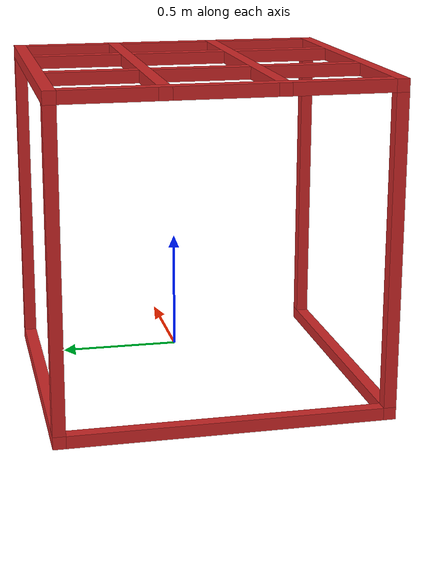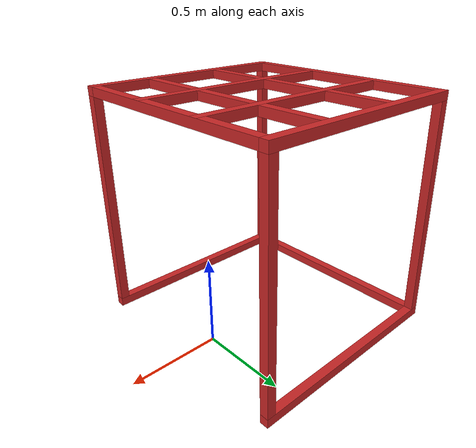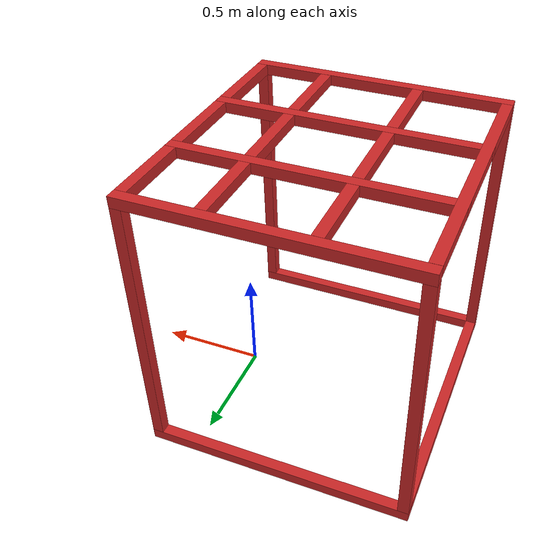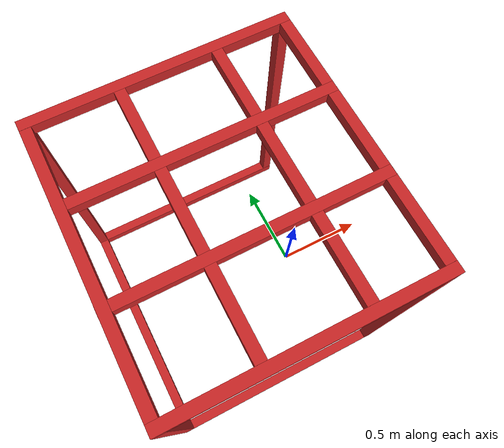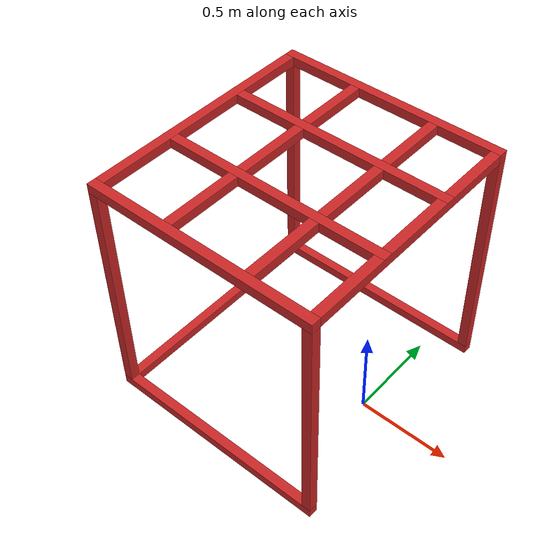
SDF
<sdf version="1.6">
 <model name="warehouse_red_box">
  <link name="link_0_clone">
   <pose>-0.997066 -0.0076 0.03 0 -0 0</pose>
   <inertial>
    <mass>1</mass>
    <inertia>
     <ixx>0.166667</ixx>
     <ixy>0</ixy>
     <ixz>0</ixz>
     <iyy>0.166667</iyy>
     <iyz>0</iyz>
     <izz>0.166667</izz>
    </inertia>
   </inertial>
   <visual name="visual">
    <geometry><box><size>0.05 1.23 0.05</size></box></geometry>
    <material>
     <lighting>1</lighting>
     <script><uri>file://media/materials/scripts/gazebo.material</uri><name>Gazebo/Red</name></script>
     <ambient>1 0 0 0</ambient>
     <diffuse>1 0 0 0</diffuse>
     <specular>0.1 0.1 0.1 1</specular>
     <emissive>0 0 0 1</emissive>
     <shader type="vertex"><normal_map>__default__</normal_map></shader>
    </material>
   </visual>
   <collision name="collision">
    <geometry><box><size>0.05 1.23 0.05</size></box></geometry>
    <surface>
     <friction>
      <ode><mu>1</mu><mu2>1</mu2><fdir1>0 0 0</fdir1><slip1>0</slip1><slip2>0</slip2></ode>
      <torsional>
       <coefficient>1</coefficient>
       <patch_radius>0</patch_radius>
       <surface_radius>0</surface_radius>
       <use_patch_radius>1</use_patch_radius>
       <ode><slip>0</slip></ode>
      </torsional>
     </friction>
     <bounce><restitution_coefficient>0</restitution_coefficient><threshold>1e+06</threshold></bounce>
     <contact>
      <collide_without_contact>0</collide_without_contact>
      <collide_without_contact_bitmask>1</collide_without_contact_bitmask>
      <collide_bitmask>1</collide_bitmask>
      <ode>
       <soft_cfm>0</soft_cfm>
       <soft_erp>0.2</soft_erp>
       <kp>1e+13</kp>
       <kd>1</kd>
       <max_vel>0.01</max_vel>
       <min_depth>0</min_depth>
      </ode>
      <bullet>
       <split_impulse>1</split_impulse>
       <split_impulse_penetration_threshold>-0.01</split_impulse_penetration_threshold>
       <soft_cfm>0</soft_cfm>
       <soft_erp>0.2</soft_erp>
       <kp>1e+13</kp>
       <kd>1</kd>
      </bullet>
     </contact>
    </surface>
   </collision>
  </link>
  <link name="link_0_clone_clone">
   <pose>-0.407063 0.632459 0.03 0 -0 1.5707</pose>
   <inertial>
    <mass>1</mass>
    <inertia>
     <ixx>0.166667</ixx>
     <ixy>0</ixy>
     <ixz>0</ixz>
     <iyy>0.166667</iyy>
     <iyz>0</iyz>
     <izz>0.166667</izz>
    </inertia>
   </inertial>
   <visual name="visual">
    <geometry><box><size>0.05 1.23 0.05</size></box></geometry>
    <material>
     <lighting>1</lighting>
     <script><uri>file://media/materials/scripts/gazebo.material</uri><name>Gazebo/Red</name></script>
     <ambient>1 0 0 0</ambient>
     <diffuse>1 0 0 0</diffuse>
     <specular>0.1 0.1 0.1 1</specular>
     <emissive>0 0 0 1</emissive>
     <shader type="vertex"><normal_map>__default__</normal_map></shader>
    </material>
   </visual>
   <collision name="collision">
    <geometry><box><size>0.05 1.23 0.05</size></box></geometry>
    <surface>
     <friction>
      <ode><mu>1</mu><mu2>1</mu2><fdir1>0 0 0</fdir1><slip1>0</slip1><slip2>0</slip2></ode>
      <torsional>
       <coefficient>1</coefficient>
       <patch_radius>0</patch_radius>
       <surface_radius>0</surface_radius>
       <use_patch_radius>1</use_patch_radius>
       <ode><slip>0</slip></ode>
      </torsional>
     </friction>
     <bounce><restitution_coefficient>0</restitution_coefficient><threshold>1e+06</threshold></bounce>
     <contact>
      <collide_without_contact>0</collide_without_contact>
      <collide_without_contact_bitmask>1</collide_without_contact_bitmask>
      <collide_bitmask>1</collide_bitmask>
      <ode>
       <soft_cfm>0</soft_cfm>
       <soft_erp>0.2</soft_erp>
       <kp>1e+13</kp>
       <kd>1</kd>
       <max_vel>0.01</max_vel>
       <min_depth>0</min_depth>
      </ode>
      <bullet>
       <split_impulse>1</split_impulse>
       <split_impulse_penetration_threshold>-0.01</split_impulse_penetration_threshold>
       <soft_cfm>0</soft_cfm>
       <soft_erp>0.2</soft_erp>
       <kp>1e+13</kp>
       <kd>1</kd>
      </bullet>
     </contact>
    </surface>
   </collision>
  </link>
  <link name="link_0_clone_clone_0">
   <pose>-0.997078 -0.007706 1.31001 -0 -3e-06 -9e-06</pose>
   <inertial>
    <mass>1</mass>
    <inertia>
     <ixx>0.166667</ixx>
     <ixy>0</ixy>
     <ixz>0</ixz>
     <iyy>0.166667</iyy>
     <iyz>0</iyz>
     <izz>0.166667</izz>
    </inertia>
   </inertial>
   <visual name="visual">
    <geometry><box><size>0.05 1.23 0.05</size></box></geometry>
    <material>
     <lighting>1</lighting>
     <script><uri>file://media/materials/scripts/gazebo.material</uri><name>Gazebo/Red</name></script>
     <ambient>1 0 0 0</ambient>
     <diffuse>1 0 0 0</diffuse>
     <specular>0.1 0.1 0.1 1</specular>
     <emissive>0 0 0 1</emissive>
     <shader type="vertex"><normal_map>__default__</normal_map></shader>
    </material>
   </visual>
   <collision name="collision">
    <geometry><box><size>0.05 1.23 0.05</size></box></geometry>
    <surface>
     <friction>
      <ode><mu>1</mu><mu2>1</mu2><fdir1>0 0 0</fdir1><slip1>0</slip1><slip2>0</slip2></ode>
      <torsional>
       <coefficient>1</coefficient>
       <patch_radius>0</patch_radius>
       <surface_radius>0</surface_radius>
       <use_patch_radius>1</use_patch_radius>
       <ode><slip>0</slip></ode>
      </torsional>
     </friction>
     <bounce><restitution_coefficient>0</restitution_coefficient><threshold>1e+06</threshold></bounce>
     <contact>
      <collide_without_contact>0</collide_without_contact>
      <collide_without_contact_bitmask>1</collide_without_contact_bitmask>
      <collide_bitmask>1</collide_bitmask>
      <ode>
       <soft_cfm>0</soft_cfm>
       <soft_erp>0.2</soft_erp>
       <kp>1e+13</kp>
       <kd>1</kd>
       <max_vel>0.01</max_vel>
       <min_depth>0</min_depth>
      </ode>
      <bullet>
       <split_impulse>1</split_impulse>
       <split_impulse_penetration_threshold>-0.01</split_impulse_penetration_threshold>
       <soft_cfm>0</soft_cfm>
       <soft_erp>0.2</soft_erp>
       <kp>1e+13</kp>
       <kd>1</kd>
      </bullet>
     </contact>
    </surface>
   </collision>
  </link>
  <link name="link_0_clone_clone_1">
   <pose>-0.146614 -0.007496 1.31 -0 -3e-06 -9e-06</pose>
   <inertial>
    <mass>1</mass>
    <inertia>
     <ixx>0.166667</ixx>
     <ixy>0</ixy>
     <ixz>0</ixz>
     <iyy>0.166667</iyy>
     <iyz>0</iyz>
     <izz>0.166667</izz>
    </inertia>
   </inertial>
   <visual name="visual">
    <geometry><box><size>0.05 1.23 0.05</size></box></geometry>
    <material>
     <lighting>1</lighting>
     <script><uri>file://media/materials/scripts/gazebo.material</uri><name>Gazebo/Red</name></script>
     <ambient>1 0 0 0</ambient>
     <diffuse>1 0 0 0</diffuse>
     <specular>0.1 0.1 0.1 1</specular>
     <emissive>0 0 0 1</emissive>
     <shader type="vertex"><normal_map>__default__</normal_map></shader>
    </material>
   </visual>
   <collision name="collision">
    <geometry><box><size>0.05 1.23 0.05</size></box></geometry>
    <surface>
     <friction>
      <ode><mu>1</mu><mu2>1</mu2><fdir1>0 0 0</fdir1><slip1>0</slip1><slip2>0</slip2></ode>
      <torsional>
       <coefficient>1</coefficient>
       <patch_radius>0</patch_radius>
       <surface_radius>0</surface_radius>
       <use_patch_radius>1</use_patch_radius>
       <ode><slip>0</slip></ode>
      </torsional>
     </friction>
     <bounce><restitution_coefficient>0</restitution_coefficient><threshold>1e+06</threshold></bounce>
     <contact>
      <collide_without_contact>0</collide_without_contact>
      <collide_without_contact_bitmask>1</collide_without_contact_bitmask>
      <collide_bitmask>1</collide_bitmask>
      <ode>
       <soft_cfm>0</soft_cfm>
       <soft_erp>0.2</soft_erp>
       <kp>1e+13</kp>
       <kd>1</kd>
       <max_vel>0.01</max_vel>
       <min_depth>0</min_depth>
      </ode>
      <bullet>
       <split_impulse>1</split_impulse>
       <split_impulse_penetration_threshold>-0.01</split_impulse_penetration_threshold>
       <soft_cfm>0</soft_cfm>
       <soft_erp>0.2</soft_erp>
       <kp>1e+13</kp>
       <kd>1</kd>
      </bullet>
     </contact>
    </surface>
   </collision>
  </link>
  <link name="link_0_clone_clone_2">
   <pose>-0.591953 -0.007492 1.31 -0 -3e-06 -9e-06</pose>
   <inertial>
    <mass>1</mass>
    <inertia>
     <ixx>0.166667</ixx>
     <ixy>0</ixy>
     <ixz>0</ixz>
     <iyy>0.166667</iyy>
     <iyz>0</iyz>
     <izz>0.166667</izz>
    </inertia>
   </inertial>
   <visual name="visual">
    <geometry><box><size>0.05 1.23 0.05</size></box></geometry>
    <material>
     <lighting>1</lighting>
     <script><uri>file://media/materials/scripts/gazebo.material</uri><name>Gazebo/Red</name></script>
     <ambient>1 0 0 0</ambient>
     <diffuse>1 0 0 0</diffuse>
     <specular>0.1 0.1 0.1 1</specular>
     <emissive>0 0 0 1</emissive>
     <shader type="vertex"><normal_map>__default__</normal_map></shader>
    </material>
   </visual>
   <collision name="collision">
    <geometry><box><size>0.05 1.23 0.05</size></box></geometry>
    <surface>
     <friction>
      <ode><mu>1</mu><mu2>1</mu2><fdir1>0 0 0</fdir1><slip1>0</slip1><slip2>0</slip2></ode>
      <torsional>
       <coefficient>1</coefficient>
       <patch_radius>0</patch_radius>
       <surface_radius>0</surface_radius>
       <use_patch_radius>1</use_patch_radius>
       <ode><slip>0</slip></ode>
      </torsional>
     </friction>
     <bounce><restitution_coefficient>0</restitution_coefficient><threshold>1e+06</threshold></bounce>
     <contact>
      <collide_without_contact>0</collide_without_contact>
      <collide_without_contact_bitmask>1</collide_without_contact_bitmask>
      <collide_bitmask>1</collide_bitmask>
      <ode>
       <soft_cfm>0</soft_cfm>
       <soft_erp>0.2</soft_erp>
       <kp>1e+13</kp>
       <kd>1</kd>
       <max_vel>0.01</max_vel>
       <min_depth>0</min_depth>
      </ode>
      <bullet>
       <split_impulse>1</split_impulse>
       <split_impulse_penetration_threshold>-0.01</split_impulse_penetration_threshold>
       <soft_cfm>0</soft_cfm>
       <soft_erp>0.2</soft_erp>
       <kp>1e+13</kp>
       <kd>1</kd>
      </bullet>
     </contact>
    </surface>
   </collision>
  </link>
  <link name="link_0_clone_clone_2_clone">
   <pose>0.182936 -0.007504 1.31001 0 -6e-06 -1.8e-05</pose>
   <inertial>
    <mass>1</mass>
    <inertia>
     <ixx>0.166667</ixx>
     <ixy>0</ixy>
     <ixz>0</ixz>
     <iyy>0.166667</iyy>
     <iyz>0</iyz>
     <izz>0.166667</izz>
    </inertia>
   </inertial>
   <visual name="visual">
    <geometry><box><size>0.05 1.23 0.05</size></box></geometry>
    <material>
     <lighting>1</lighting>
     <script><uri>file://media/materials/scripts/gazebo.material</uri><name>Gazebo/Red</name></script>
     <ambient>1 0 0 0</ambient>
     <diffuse>1 0 0 0</diffuse>
     <specular>0.1 0.1 0.1 1</specular>
     <emissive>0 0 0 1</emissive>
     <shader type="vertex"><normal_map>__default__</normal_map></shader>
    </material>
   </visual>
   <collision name="collision">
    <geometry><box><size>0.05 1.23 0.05</size></box></geometry>
    <surface>
     <friction>
      <ode><mu>1</mu><mu2>1</mu2><fdir1>0 0 0</fdir1><slip1>0</slip1><slip2>0</slip2></ode>
      <torsional>
       <coefficient>1</coefficient>
       <patch_radius>0</patch_radius>
       <surface_radius>0</surface_radius>
       <use_patch_radius>1</use_patch_radius>
       <ode><slip>0</slip></ode>
      </torsional>
     </friction>
     <bounce><restitution_coefficient>0</restitution_coefficient><threshold>1e+06</threshold></bounce>
     <contact>
      <collide_without_contact>0</collide_without_contact>
      <collide_without_contact_bitmask>1</collide_without_contact_bitmask>
      <collide_bitmask>1</collide_bitmask>
      <ode>
       <soft_cfm>0</soft_cfm>
       <soft_erp>0.2</soft_erp>
       <kp>1e+13</kp>
       <kd>1</kd>
       <max_vel>0.01</max_vel>
       <min_depth>0</min_depth>
      </ode>
      <bullet>
       <split_impulse>1</split_impulse>
       <split_impulse_penetration_threshold>-0.01</split_impulse_penetration_threshold>
       <soft_cfm>0</soft_cfm>
       <soft_erp>0.2</soft_erp>
       <kp>1e+13</kp>
       <kd>1</kd>
      </bullet>
     </contact>
    </surface>
   </collision>
  </link>
  <link name="link_0_clone_clone_clone">
   <pose>-0.407063 -0.647659 0.03 0 -0 1.5707</pose>
   <inertial>
    <mass>1</mass>
    <inertia>
     <ixx>0.166667</ixx>
     <ixy>0</ixy>
     <ixz>0</ixz>
     <iyy>0.166667</iyy>
     <iyz>0</iyz>
     <izz>0.166667</izz>
    </inertia>
   </inertial>
   <visual name="visual">
    <geometry><box><size>0.05 1.23 0.05</size></box></geometry>
    <material>
     <lighting>1</lighting>
     <script><uri>file://media/materials/scripts/gazebo.material</uri><name>Gazebo/Red</name></script>
     <ambient>1 0 0 0</ambient>
     <diffuse>1 0 0 0</diffuse>
     <specular>0.1 0.1 0.1 1</specular>
     <emissive>0 0 0 1</emissive>
     <shader type="vertex"><normal_map>__default__</normal_map></shader>
    </material>
   </visual>
   <collision name="collision">
    <geometry><box><size>0.05 1.23 0.05</size></box></geometry>
    <surface>
     <friction>
      <ode><mu>1</mu><mu2>1</mu2><fdir1>0 0 0</fdir1><slip1>0</slip1><slip2>0</slip2></ode>
      <torsional>
       <coefficient>1</coefficient>
       <patch_radius>0</patch_radius>
       <surface_radius>0</surface_radius>
       <use_patch_radius>1</use_patch_radius>
       <ode><slip>0</slip></ode>
      </torsional>
     </friction>
     <bounce><restitution_coefficient>0</restitution_coefficient><threshold>1e+06</threshold></bounce>
     <contact>
      <collide_without_contact>0</collide_without_contact>
      <collide_without_contact_bitmask>1</collide_without_contact_bitmask>
      <collide_bitmask>1</collide_bitmask>
      <ode>
       <soft_cfm>0</soft_cfm>
       <soft_erp>0.2</soft_erp>
       <kp>1e+13</kp>
       <kd>1</kd>
       <max_vel>0.01</max_vel>
       <min_depth>0</min_depth>
      </ode>
      <bullet>
       <split_impulse>1</split_impulse>
       <split_impulse_penetration_threshold>-0.01</split_impulse_penetration_threshold>
       <soft_cfm>0</soft_cfm>
       <soft_erp>0.2</soft_erp>
       <kp>1e+13</kp>
       <kd>1</kd>
      </bullet>
     </contact>
    </surface>
   </collision>
  </link>
  <link name="link_0_clone_clone_clone_0">
   <pose>-0.407343 0.226275 1.31001 -3e-06 0 1.56992</pose>
   <inertial>
    <mass>1</mass>
    <inertia>
     <ixx>0.166667</ixx>
     <ixy>0</ixy>
     <ixz>0</ixz>
     <iyy>0.166667</iyy>
     <iyz>0</iyz>
     <izz>0.166667</izz>
    </inertia>
   </inertial>
   <visual name="visual">
    <geometry><box><size>0.05 1.23 0.05</size></box></geometry>
    <material>
     <lighting>1</lighting>
     <script><uri>file://media/materials/scripts/gazebo.material</uri><name>Gazebo/Red</name></script>
     <ambient>1 0 0 0</ambient>
     <diffuse>1 0 0 0</diffuse>
     <specular>0.1 0.1 0.1 1</specular>
     <emissive>0 0 0 1</emissive>
     <shader type="vertex"><normal_map>__default__</normal_map></shader>
    </material>
   </visual>
   <collision name="collision">
    <geometry><box><size>0.05 1.23 0.05</size></box></geometry>
    <surface>
     <friction>
      <ode><mu>1</mu><mu2>1</mu2><fdir1>0 0 0</fdir1><slip1>0</slip1><slip2>0</slip2></ode>
      <torsional>
       <coefficient>1</coefficient>
       <patch_radius>0</patch_radius>
       <surface_radius>0</surface_radius>
       <use_patch_radius>1</use_patch_radius>
       <ode><slip>0</slip></ode>
      </torsional>
     </friction>
     <bounce><restitution_coefficient>0</restitution_coefficient><threshold>1e+06</threshold></bounce>
     <contact>
      <collide_without_contact>0</collide_without_contact>
      <collide_without_contact_bitmask>1</collide_without_contact_bitmask>
      <collide_bitmask>1</collide_bitmask>
      <ode>
       <soft_cfm>0</soft_cfm>
       <soft_erp>0.2</soft_erp>
       <kp>1e+13</kp>
       <kd>1</kd>
       <max_vel>0.01</max_vel>
       <min_depth>0</min_depth>
      </ode>
      <bullet>
       <split_impulse>1</split_impulse>
       <split_impulse_penetration_threshold>-0.01</split_impulse_penetration_threshold>
       <soft_cfm>0</soft_cfm>
       <soft_erp>0.2</soft_erp>
       <kp>1e+13</kp>
       <kd>1</kd>
      </bullet>
     </contact>
    </surface>
   </collision>
  </link>
  <link name="link_0_clone_clone_clone_clone">
   <pose>0.182939 -0.647558 0.670002 1.5707 -0 0</pose>
   <inertial>
    <mass>1</mass>
    <inertia>
     <ixx>0.166667</ixx>
     <ixy>0</ixy>
     <ixz>0</ixz>
     <iyy>0.166667</iyy>
     <iyz>0</iyz>
     <izz>0.166667</izz>
    </inertia>
   </inertial>
   <visual name="visual">
    <geometry><box><size>0.05 1.23 0.05</size></box></geometry>
    <material>
     <lighting>1</lighting>
     <script><uri>file://media/materials/scripts/gazebo.material</uri><name>Gazebo/Red</name></script>
     <ambient>1 0 0 0</ambient>
     <diffuse>1 0 0 0</diffuse>
     <specular>0.1 0.1 0.1 1</specular>
     <emissive>0 0 0 1</emissive>
     <shader type="vertex"><normal_map>__default__</normal_map></shader>
    </material>
   </visual>
   <collision name="collision">
    <geometry><box><size>0.05 1.23 0.05</size></box></geometry>
    <surface>
     <friction>
      <ode><mu>1</mu><mu2>1</mu2><fdir1>0 0 0</fdir1><slip1>0</slip1><slip2>0</slip2></ode>
      <torsional>
       <coefficient>1</coefficient>
       <patch_radius>0</patch_radius>
       <surface_radius>0</surface_radius>
       <use_patch_radius>1</use_patch_radius>
       <ode><slip>0</slip></ode>
      </torsional>
     </friction>
     <bounce><restitution_coefficient>0</restitution_coefficient><threshold>1e+06</threshold></bounce>
     <contact>
      <collide_without_contact>0</collide_without_contact>
      <collide_without_contact_bitmask>1</collide_without_contact_bitmask>
      <collide_bitmask>1</collide_bitmask>
      <ode>
       <soft_cfm>0</soft_cfm>
       <soft_erp>0.2</soft_erp>
       <kp>1e+13</kp>
       <kd>1</kd>
       <max_vel>0.01</max_vel>
       <min_depth>0</min_depth>
      </ode>
      <bullet>
       <split_impulse>1</split_impulse>
       <split_impulse_penetration_threshold>-0.01</split_impulse_penetration_threshold>
       <soft_cfm>0</soft_cfm>
       <soft_erp>0.2</soft_erp>
       <kp>1e+13</kp>
       <kd>1</kd>
      </bullet>
     </contact>
    </surface>
   </collision>
  </link>
  <link name="link_0_clone_clone_clone_clone_0">
   <pose>-0.407063 -0.647552 1.31 -3e-06 -0 1.57069</pose>
   <inertial>
    <mass>1</mass>
    <inertia>
     <ixx>0.166667</ixx>
     <ixy>0</ixy>
     <ixz>0</ixz>
     <iyy>0.166667</iyy>
     <iyz>0</iyz>
     <izz>0.166667</izz>
    </inertia>
   </inertial>
   <visual name="visual">
    <geometry><box><size>0.05 1.23 0.05</size></box></geometry>
    <material>
     <lighting>1</lighting>
     <script><uri>file://media/materials/scripts/gazebo.material</uri><name>Gazebo/Red</name></script>
     <ambient>1 0 0 0</ambient>
     <diffuse>1 0 0 0</diffuse>
     <specular>0.1 0.1 0.1 1</specular>
     <emissive>0 0 0 1</emissive>
     <shader type="vertex"><normal_map>__default__</normal_map></shader>
    </material>
   </visual>
   <collision name="collision">
    <geometry><box><size>0.05 1.23 0.05</size></box></geometry>
    <surface>
     <friction>
      <ode><mu>1</mu><mu2>1</mu2><fdir1>0 0 0</fdir1><slip1>0</slip1><slip2>0</slip2></ode>
      <torsional>
       <coefficient>1</coefficient>
       <patch_radius>0</patch_radius>
       <surface_radius>0</surface_radius>
       <use_patch_radius>1</use_patch_radius>
       <ode><slip>0</slip></ode>
      </torsional>
     </friction>
     <bounce><restitution_coefficient>0</restitution_coefficient><threshold>1e+06</threshold></bounce>
     <contact>
      <collide_without_contact>0</collide_without_contact>
      <collide_without_contact_bitmask>1</collide_without_contact_bitmask>
      <collide_bitmask>1</collide_bitmask>
      <ode>
       <soft_cfm>0</soft_cfm>
       <soft_erp>0.2</soft_erp>
       <kp>1e+13</kp>
       <kd>1</kd>
       <max_vel>0.01</max_vel>
       <min_depth>0</min_depth>
      </ode>
      <bullet>
       <split_impulse>1</split_impulse>
       <split_impulse_penetration_threshold>-0.01</split_impulse_penetration_threshold>
       <soft_cfm>0</soft_cfm>
       <soft_erp>0.2</soft_erp>
       <kp>1e+13</kp>
       <kd>1</kd>
      </bullet>
     </contact>
    </surface>
   </collision>
  </link>
  <link name="link_0_clone_clone_clone_clone_1">
   <pose>-0.407054 0.632566 1.31 -3e-06 -0 1.57069</pose>
   <inertial>
    <mass>1</mass>
    <inertia>
     <ixx>0.166667</ixx>
     <ixy>0</ixy>
     <ixz>0</ixz>
     <iyy>0.166667</iyy>
     <iyz>0</iyz>
     <izz>0.166667</izz>
    </inertia>
   </inertial>
   <visual name="visual">
    <geometry><box><size>0.05 1.23 0.05</size></box></geometry>
    <material>
     <lighting>1</lighting>
     <script><uri>file://media/materials/scripts/gazebo.material</uri><name>Gazebo/Red</name></script>
     <ambient>1 0 0 0</ambient>
     <diffuse>1 0 0 0</diffuse>
     <specular>0.1 0.1 0.1 1</specular>
     <emissive>0 0 0 1</emissive>
     <shader type="vertex"><normal_map>__default__</normal_map></shader>
    </material>
   </visual>
   <collision name="collision">
    <geometry><box><size>0.05 1.23 0.05</size></box></geometry>
    <surface>
     <friction>
      <ode><mu>1</mu><mu2>1</mu2><fdir1>0 0 0</fdir1><slip1>0</slip1><slip2>0</slip2></ode>
      <torsional>
       <coefficient>1</coefficient>
       <patch_radius>0</patch_radius>
       <surface_radius>0</surface_radius>
       <use_patch_radius>1</use_patch_radius>
       <ode><slip>0</slip></ode>
      </torsional>
     </friction>
     <bounce><restitution_coefficient>0</restitution_coefficient><threshold>1e+06</threshold></bounce>
     <contact>
      <collide_without_contact>0</collide_without_contact>
      <collide_without_contact_bitmask>1</collide_without_contact_bitmask>
      <collide_bitmask>1</collide_bitmask>
      <ode>
       <soft_cfm>0</soft_cfm>
       <soft_erp>0.2</soft_erp>
       <kp>1e+13</kp>
       <kd>1</kd>
       <max_vel>0.01</max_vel>
       <min_depth>0</min_depth>
      </ode>
      <bullet>
       <split_impulse>1</split_impulse>
       <split_impulse_penetration_threshold>-0.01</split_impulse_penetration_threshold>
       <soft_cfm>0</soft_cfm>
       <soft_erp>0.2</soft_erp>
       <kp>1e+13</kp>
       <kd>1</kd>
      </bullet>
     </contact>
    </surface>
   </collision>
  </link>
  <link name="link_0_clone_clone_clone_clone_2">
   <pose>-0.407722 -0.207755 1.31001 -3e-06 0 1.56992</pose>
   <inertial>
    <mass>1</mass>
    <inertia>
     <ixx>0.166667</ixx>
     <ixy>0</ixy>
     <ixz>0</ixz>
     <iyy>0.166667</iyy>
     <iyz>0</iyz>
     <izz>0.166667</izz>
    </inertia>
   </inertial>
   <visual name="visual">
    <geometry><box><size>0.05 1.23 0.05</size></box></geometry>
    <material>
     <lighting>1</lighting>
     <script><uri>file://media/materials/scripts/gazebo.material</uri><name>Gazebo/Red</name></script>
     <ambient>1 0 0 0</ambient>
     <diffuse>1 0 0 0</diffuse>
     <specular>0.1 0.1 0.1 1</specular>
     <emissive>0 0 0 1</emissive>
     <shader type="vertex"><normal_map>__default__</normal_map></shader>
    </material>
   </visual>
   <collision name="collision">
    <geometry><box><size>0.05 1.23 0.05</size></box></geometry>
    <surface>
     <friction>
      <ode><mu>1</mu><mu2>1</mu2><fdir1>0 0 0</fdir1><slip1>0</slip1><slip2>0</slip2></ode>
      <torsional>
       <coefficient>1</coefficient>
       <patch_radius>0</patch_radius>
       <surface_radius>0</surface_radius>
       <use_patch_radius>1</use_patch_radius>
       <ode><slip>0</slip></ode>
      </torsional>
     </friction>
     <bounce><restitution_coefficient>0</restitution_coefficient><threshold>1e+06</threshold></bounce>
     <contact>
      <collide_without_contact>0</collide_without_contact>
      <collide_without_contact_bitmask>1</collide_without_contact_bitmask>
      <collide_bitmask>1</collide_bitmask>
      <ode>
       <soft_cfm>0</soft_cfm>
       <soft_erp>0.2</soft_erp>
       <kp>1e+13</kp>
       <kd>1</kd>
       <max_vel>0.01</max_vel>
       <min_depth>0</min_depth>
      </ode>
      <bullet>
       <split_impulse>1</split_impulse>
       <split_impulse_penetration_threshold>-0.01</split_impulse_penetration_threshold>
       <soft_cfm>0</soft_cfm>
       <soft_erp>0.2</soft_erp>
       <kp>1e+13</kp>
       <kd>1</kd>
      </bullet>
     </contact>
    </surface>
   </collision>
  </link>
  <link name="link_0_clone_clone_clone_clone_clone">
   <pose>0.182944 0.63256 0.670002 1.5707 0 0.00017</pose>
   <inertial>
    <mass>1</mass>
    <inertia>
     <ixx>0.166667</ixx>
     <ixy>0</ixy>
     <ixz>0</ixz>
     <iyy>0.166667</iyy>
     <iyz>0</iyz>
     <izz>0.166667</izz>
    </inertia>
   </inertial>
   <visual name="visual">
    <geometry><box><size>0.05 1.23 0.05</size></box></geometry>
    <material>
     <lighting>1</lighting>
     <script><uri>file://media/materials/scripts/gazebo.material</uri><name>Gazebo/Red</name></script>
     <ambient>1 0 0 0</ambient>
     <diffuse>1 0 0 0</diffuse>
     <specular>0.1 0.1 0.1 1</specular>
     <emissive>0 0 0 1</emissive>
     <shader type="vertex"><normal_map>__default__</normal_map></shader>
    </material>
   </visual>
   <collision name="collision">
    <geometry><box><size>0.05 1.23 0.05</size></box></geometry>
    <surface>
     <friction>
      <ode><mu>1</mu><mu2>1</mu2><fdir1>0 0 0</fdir1><slip1>0</slip1><slip2>0</slip2></ode>
      <torsional>
       <coefficient>1</coefficient>
       <patch_radius>0</patch_radius>
       <surface_radius>0</surface_radius>
       <use_patch_radius>1</use_patch_radius>
       <ode><slip>0</slip></ode>
      </torsional>
     </friction>
     <bounce><restitution_coefficient>0</restitution_coefficient><threshold>1e+06</threshold></bounce>
     <contact>
      <collide_without_contact>0</collide_without_contact>
      <collide_without_contact_bitmask>1</collide_without_contact_bitmask>
      <collide_bitmask>1</collide_bitmask>
      <ode>
       <soft_cfm>0</soft_cfm>
       <soft_erp>0.2</soft_erp>
       <kp>1e+13</kp>
       <kd>1</kd>
       <max_vel>0.01</max_vel>
       <min_depth>0</min_depth>
      </ode>
      <bullet>
       <split_impulse>1</split_impulse>
       <split_impulse_penetration_threshold>-0.01</split_impulse_penetration_threshold>
       <soft_cfm>0</soft_cfm>
       <soft_erp>0.2</soft_erp>
       <kp>1e+13</kp>
       <kd>1</kd>
      </bullet>
     </contact>
    </surface>
   </collision>
  </link>
  <link name="link_0_clone_clone_clone_clone_clone_0">
   <pose>-0.99707 0.632358 0.670003 1.5707 0 0.00017</pose>
   <inertial>
    <mass>1</mass>
    <inertia>
     <ixx>0.166667</ixx>
     <ixy>0</ixy>
     <ixz>0</ixz>
     <iyy>0.166667</iyy>
     <iyz>0</iyz>
     <izz>0.166667</izz>
    </inertia>
   </inertial>
   <visual name="visual">
    <geometry><box><size>0.05 1.23 0.05</size></box></geometry>
    <material>
     <lighting>1</lighting>
     <script><uri>file://media/materials/scripts/gazebo.material</uri><name>Gazebo/Red</name></script>
     <ambient>1 0 0 0</ambient>
     <diffuse>1 0 0 0</diffuse>
     <specular>0.1 0.1 0.1 1</specular>
     <emissive>0 0 0 1</emissive>
     <shader type="vertex"><normal_map>__default__</normal_map></shader>
    </material>
   </visual>
   <collision name="collision">
    <geometry><box><size>0.05 1.23 0.05</size></box></geometry>
    <surface>
     <friction>
      <ode><mu>1</mu><mu2>1</mu2><fdir1>0 0 0</fdir1><slip1>0</slip1><slip2>0</slip2></ode>
      <torsional>
       <coefficient>1</coefficient>
       <patch_radius>0</patch_radius>
       <surface_radius>0</surface_radius>
       <use_patch_radius>1</use_patch_radius>
       <ode><slip>0</slip></ode>
      </torsional>
     </friction>
     <bounce><restitution_coefficient>0</restitution_coefficient><threshold>1e+06</threshold></bounce>
     <contact>
      <collide_without_contact>0</collide_without_contact>
      <collide_without_contact_bitmask>1</collide_without_contact_bitmask>
      <collide_bitmask>1</collide_bitmask>
      <ode>
       <soft_cfm>0</soft_cfm>
       <soft_erp>0.2</soft_erp>
       <kp>1e+13</kp>
       <kd>1</kd>
       <max_vel>0.01</max_vel>
       <min_depth>0</min_depth>
      </ode>
      <bullet>
       <split_impulse>1</split_impulse>
       <split_impulse_penetration_threshold>-0.01</split_impulse_penetration_threshold>
       <soft_cfm>0</soft_cfm>
       <soft_erp>0.2</soft_erp>
       <kp>1e+13</kp>
       <kd>1</kd>
      </bullet>
     </contact>
    </surface>
   </collision>
  </link>
  <link name="link_0_clone_clone_clone_clone_clone_1">
   <pose>-0.99707 -0.64776 0.670003 1.5707 0 0.00017</pose>
   <inertial>
    <mass>1</mass>
    <inertia>
     <ixx>0.166667</ixx>
     <ixy>0</ixy>
     <ixz>0</ixz>
     <iyy>0.166667</iyy>
     <iyz>0</iyz>
     <izz>0.166667</izz>
    </inertia>
   </inertial>
   <visual name="visual">
    <geometry><box><size>0.05 1.23 0.05</size></box></geometry>
    <material>
     <lighting>1</lighting>
     <script><uri>file://media/materials/scripts/gazebo.material</uri><name>Gazebo/Red</name></script>
     <ambient>1 0 0 0</ambient>
     <diffuse>1 0 0 0</diffuse>
     <specular>0.1 0.1 0.1 1</specular>
     <emissive>0 0 0 1</emissive>
     <shader type="vertex"><normal_map>__default__</normal_map></shader>
    </material>
   </visual>
   <collision name="collision">
    <geometry><box><size>0.05 1.23 0.05</size></box></geometry>
    <surface>
     <friction>
      <ode><mu>1</mu><mu2>1</mu2><fdir1>0 0 0</fdir1><slip1>0</slip1><slip2>0</slip2></ode>
      <torsional>
       <coefficient>1</coefficient>
       <patch_radius>0</patch_radius>
       <surface_radius>0</surface_radius>
       <use_patch_radius>1</use_patch_radius>
       <ode><slip>0</slip></ode>
      </torsional>
     </friction>
     <bounce><restitution_coefficient>0</restitution_coefficient><threshold>1e+06</threshold></bounce>
     <contact>
      <collide_without_contact>0</collide_without_contact>
      <collide_without_contact_bitmask>1</collide_without_contact_bitmask>
      <collide_bitmask>1</collide_bitmask>
      <ode>
       <soft_cfm>0</soft_cfm>
       <soft_erp>0.2</soft_erp>
       <kp>1e+13</kp>
       <kd>1</kd>
       <max_vel>0.01</max_vel>
       <min_depth>0</min_depth>
      </ode>
      <bullet>
       <split_impulse>1</split_impulse>
       <split_impulse_penetration_threshold>-0.01</split_impulse_penetration_threshold>
       <soft_cfm>0</soft_cfm>
       <soft_erp>0.2</soft_erp>
       <kp>1e+13</kp>
       <kd>1</kd>
      </bullet>
     </contact>
    </surface>
   </collision>
  </link>
  <joint name="link_0_clone_JOINT_0" type="fixed">
   <parent>link_0_clone</parent>
   <child>link_0_clone_clone</child>
   <physics>
    <ode><limit><cfm>0</cfm><erp>0.2</erp></limit><suspension><cfm>0</cfm><erp>0.2</erp></suspension></ode>
   </physics>
  </joint>
  <joint name="link_0_clone_JOINT_11" type="fixed">
   <parent>link_0_clone</parent>
   <child>link_0_clone_clone_clone_clone_clone_1</child>
   <physics>
    <ode><limit><cfm>0</cfm><erp>0.2</erp></limit><suspension><cfm>0</cfm><erp>0.2</erp></suspension></ode>
   </physics>
  </joint>
  <joint name="link_0_clone_JOINT_2" type="fixed">
   <parent>link_0_clone</parent>
   <child>link_0_clone_clone_clone</child>
   <physics>
    <ode><limit><cfm>0</cfm><erp>0.2</erp></limit><suspension><cfm>0</cfm><erp>0.2</erp></suspension></ode>
   </physics>
  </joint>
  <joint name="link_0_clone_JOINT_7" type="fixed">
   <parent>link_0_clone</parent>
   <child>link_0_clone_clone_clone_clone_clone_0</child>
   <physics>
    <ode><limit><cfm>0</cfm><erp>0.2</erp></limit><suspension><cfm>0</cfm><erp>0.2</erp></suspension></ode>
   </physics>
  </joint>
  <joint name="link_0_clone_clone_0_JOINT_11" type="fixed">
   <parent>link_0_clone_clone_0</parent>
   <child>link_0_clone_clone_clone_clone_clone_1</child>
   <physics>
    <ode><limit><cfm>0</cfm><erp>0.2</erp></limit><suspension><cfm>0</cfm><erp>0.2</erp></suspension></ode>
   </physics>
  </joint>
  <joint name="link_0_clone_clone_0_JOINT_13" type="fixed">
   <parent>link_0_clone_clone_0</parent>
   <child>link_0_clone_clone_clone_clone_1</child>
   <physics>
    <ode><limit><cfm>0</cfm><erp>0.2</erp></limit><suspension><cfm>0</cfm><erp>0.2</erp></suspension></ode>
   </physics>
  </joint>
  <joint name="link_0_clone_clone_0_JOINT_15" type="fixed">
   <parent>link_0_clone_clone_0</parent>
   <child>link_0_clone_clone_clone_clone_0</child>
   <physics>
    <ode><limit><cfm>0</cfm><erp>0.2</erp></limit><suspension><cfm>0</cfm><erp>0.2</erp></suspension></ode>
   </physics>
  </joint>
  <joint name="link_0_clone_clone_0_JOINT_1" type="fixed">
   <parent>link_0_clone_clone_0</parent>
   <child>link_0_clone_clone_clone_0</child>
   <physics>
    <ode><limit><cfm>0</cfm><erp>0.2</erp></limit><suspension><cfm>0</cfm><erp>0.2</erp></suspension></ode>
   </physics>
  </joint>
  <joint name="link_0_clone_clone_0_JOINT_5" type="fixed">
   <parent>link_0_clone_clone_0</parent>
   <child>link_0_clone_clone_clone_clone_2</child>
   <physics>
    <ode><limit><cfm>0</cfm><erp>0.2</erp></limit><suspension><cfm>0</cfm><erp>0.2</erp></suspension></ode>
   </physics>
  </joint>
  <joint name="link_0_clone_clone_0_JOINT_9" type="fixed">
   <parent>link_0_clone_clone_0</parent>
   <child>link_0_clone_clone_clone_clone_clone_0</child>
   <physics>
    <ode><limit><cfm>0</cfm><erp>0.2</erp></limit><suspension><cfm>0</cfm><erp>0.2</erp></suspension></ode>
   </physics>
  </joint>
  <joint name="link_0_clone_clone_1_JOINT_25" type="fixed">
   <parent>link_0_clone_clone_1</parent>
   <child>link_0_clone_clone_clone_clone_1</child>
   <physics>
    <ode><limit><cfm>0</cfm><erp>0.2</erp></limit><suspension><cfm>0</cfm><erp>0.2</erp></suspension></ode>
   </physics>
  </joint>
  <joint name="link_0_clone_clone_1_JOINT_27" type="fixed">
   <parent>link_0_clone_clone_1</parent>
   <child>link_0_clone_clone_clone_clone_0</child>
   <physics>
    <ode><limit><cfm>0</cfm><erp>0.2</erp></limit><suspension><cfm>0</cfm><erp>0.2</erp></suspension></ode>
   </physics>
  </joint>
  <joint name="link_0_clone_clone_2_JOINT_29" type="fixed">
   <parent>link_0_clone_clone_2</parent>
   <child>link_0_clone_clone_clone_clone_1</child>
   <physics>
    <ode><limit><cfm>0</cfm><erp>0.2</erp></limit><suspension><cfm>0</cfm><erp>0.2</erp></suspension></ode>
   </physics>
  </joint>
  <joint name="link_0_clone_clone_2_JOINT_31" type="fixed">
   <parent>link_0_clone_clone_2</parent>
   <child>link_0_clone_clone_clone_clone_0</child>
   <physics>
    <ode><limit><cfm>0</cfm><erp>0.2</erp></limit><suspension><cfm>0</cfm><erp>0.2</erp></suspension></ode>
   </physics>
  </joint>
  <joint name="link_0_clone_clone_2_clone_JOINT_17" type="fixed">
   <parent>link_0_clone_clone_2_clone</parent>
   <child>link_0_clone_clone_clone_clone_clone</child>
   <physics>
    <ode><limit><cfm>0</cfm><erp>0.2</erp></limit><suspension><cfm>0</cfm><erp>0.2</erp></suspension></ode>
   </physics>
  </joint>
  <joint name="link_0_clone_clone_2_clone_JOINT_19" type="fixed">
   <parent>link_0_clone_clone_2_clone</parent>
   <child>link_0_clone_clone_clone_clone</child>
   <physics>
    <ode><limit><cfm>0</cfm><erp>0.2</erp></limit><suspension><cfm>0</cfm><erp>0.2</erp></suspension></ode>
   </physics>
  </joint>
  <joint name="link_0_clone_clone_2_clone_JOINT_21" type="fixed">
   <parent>link_0_clone_clone_2_clone</parent>
   <child>link_0_clone_clone_clone_clone_0</child>
   <physics>
    <ode><limit><cfm>0</cfm><erp>0.2</erp></limit><suspension><cfm>0</cfm><erp>0.2</erp></suspension></ode>
   </physics>
  </joint>
  <joint name="link_0_clone_clone_2_clone_JOINT_23" type="fixed">
   <parent>link_0_clone_clone_2_clone</parent>
   <child>link_0_clone_clone_clone_clone_1</child>
   <physics>
    <ode><limit><cfm>0</cfm><erp>0.2</erp></limit><suspension><cfm>0</cfm><erp>0.2</erp></suspension></ode>
   </physics>
  </joint>
  <joint name="link_0_clone_clone_2_clone_JOINT_3" type="fixed">
   <parent>link_0_clone_clone_2_clone</parent>
   <child>link_0_clone_clone_clone_0</child>
   <physics>
    <ode><limit><cfm>0</cfm><erp>0.2</erp></limit><suspension><cfm>0</cfm><erp>0.2</erp></suspension></ode>
   </physics>
  </joint>
  <joint name="link_0_clone_clone_2_clone_JOINT_7" type="fixed">
   <parent>link_0_clone_clone_2_clone</parent>
   <child>link_0_clone_clone_clone_clone_2</child>
   <physics>
    <ode><limit><cfm>0</cfm><erp>0.2</erp></limit><suspension><cfm>0</cfm><erp>0.2</erp></suspension></ode>
   </physics>
  </joint>
  <joint name="link_0_clone_clone_JOINT_1" type="fixed">
   <parent>link_0_clone_clone</parent>
   <child>link_0_clone</child>
   <physics>
    <ode><limit><cfm>0</cfm><erp>0.2</erp></limit><suspension><cfm>0</cfm><erp>0.2</erp></suspension></ode>
   </physics>
  </joint>
  <joint name="link_0_clone_clone_JOINT_2" type="fixed">
   <parent>link_0_clone_clone</parent>
   <child>link_0_clone_clone_clone_clone_clone</child>
   <physics>
    <ode><limit><cfm>0</cfm><erp>0.2</erp></limit><suspension><cfm>0</cfm><erp>0.2</erp></suspension></ode>
   </physics>
  </joint>
  <joint name="link_0_clone_clone_JOINT_4" type="fixed">
   <parent>link_0_clone_clone</parent>
   <child>link_0_clone_clone_clone_clone_clone_0</child>
   <physics>
    <ode><limit><cfm>0</cfm><erp>0.2</erp></limit><suspension><cfm>0</cfm><erp>0.2</erp></suspension></ode>
   </physics>
  </joint>
  <joint name="link_0_clone_clone_clone_0_JOINT_2" type="fixed">
   <parent>link_0_clone_clone_clone_0</parent>
   <child>link_0_clone_clone_0</child>
   <physics>
    <ode><limit><cfm>0</cfm><erp>0.2</erp></limit><suspension><cfm>0</cfm><erp>0.2</erp></suspension></ode>
   </physics>
  </joint>
  <joint name="link_0_clone_clone_clone_0_JOINT_4" type="fixed">
   <parent>link_0_clone_clone_clone_0</parent>
   <child>link_0_clone_clone_2_clone</child>
   <physics>
    <ode><limit><cfm>0</cfm><erp>0.2</erp></limit><suspension><cfm>0</cfm><erp>0.2</erp></suspension></ode>
   </physics>
  </joint>
  <joint name="link_0_clone_clone_clone_JOINT_0" type="fixed">
   <parent>link_0_clone_clone_clone</parent>
   <child>link_0_clone_clone_clone_clone</child>
   <physics>
    <ode><limit><cfm>0</cfm><erp>0.2</erp></limit><suspension><cfm>0</cfm><erp>0.2</erp></suspension></ode>
   </physics>
  </joint>
  <joint name="link_0_clone_clone_clone_JOINT_3" type="fixed">
   <parent>link_0_clone_clone_clone</parent>
   <child>link_0_clone</child>
   <physics>
    <ode><limit><cfm>0</cfm><erp>0.2</erp></limit><suspension><cfm>0</cfm><erp>0.2</erp></suspension></ode>
   </physics>
  </joint>
  <joint name="link_0_clone_clone_clone_JOINT_9" type="fixed">
   <parent>link_0_clone_clone_clone</parent>
   <child>link_0_clone_clone_clone_clone_clone_1</child>
   <physics>
    <ode><limit><cfm>0</cfm><erp>0.2</erp></limit><suspension><cfm>0</cfm><erp>0.2</erp></suspension></ode>
   </physics>
  </joint>
  <joint name="link_0_clone_clone_clone_clone_0_JOINT_14" type="fixed">
   <parent>link_0_clone_clone_clone_clone_0</parent>
   <child>link_0_clone_clone_0</child>
   <physics>
    <ode><limit><cfm>0</cfm><erp>0.2</erp></limit><suspension><cfm>0</cfm><erp>0.2</erp></suspension></ode>
   </physics>
  </joint>
  <joint name="link_0_clone_clone_clone_clone_0_JOINT_20" type="fixed">
   <parent>link_0_clone_clone_clone_clone_0</parent>
   <child>link_0_clone_clone_2_clone</child>
   <physics>
    <ode><limit><cfm>0</cfm><erp>0.2</erp></limit><suspension><cfm>0</cfm><erp>0.2</erp></suspension></ode>
   </physics>
  </joint>
  <joint name="link_0_clone_clone_clone_clone_0_JOINT_26" type="fixed">
   <parent>link_0_clone_clone_clone_clone_0</parent>
   <child>link_0_clone_clone_1</child>
   <physics>
    <ode><limit><cfm>0</cfm><erp>0.2</erp></limit><suspension><cfm>0</cfm><erp>0.2</erp></suspension></ode>
   </physics>
  </joint>
  <joint name="link_0_clone_clone_clone_clone_0_JOINT_30" type="fixed">
   <parent>link_0_clone_clone_clone_clone_0</parent>
   <child>link_0_clone_clone_2</child>
   <physics>
    <ode><limit><cfm>0</cfm><erp>0.2</erp></limit><suspension><cfm>0</cfm><erp>0.2</erp></suspension></ode>
   </physics>
  </joint>
  <joint name="link_0_clone_clone_clone_clone_0_JOINT_5" type="fixed">
   <parent>link_0_clone_clone_clone_clone_0</parent>
   <child>link_0_clone_clone_clone_clone</child>
   <physics>
    <ode><limit><cfm>0</cfm><erp>0.2</erp></limit><suspension><cfm>0</cfm><erp>0.2</erp></suspension></ode>
   </physics>
  </joint>
  <joint name="link_0_clone_clone_clone_clone_0_JOINT_7" type="fixed">
   <parent>link_0_clone_clone_clone_clone_0</parent>
   <child>link_0_clone_clone_clone_clone_clone_1</child>
   <physics>
    <ode><limit><cfm>0</cfm><erp>0.2</erp></limit><suspension><cfm>0</cfm><erp>0.2</erp></suspension></ode>
   </physics>
  </joint>
  <joint name="link_0_clone_clone_clone_clone_1_JOINT_12" type="fixed">
   <parent>link_0_clone_clone_clone_clone_1</parent>
   <child>link_0_clone_clone_0</child>
   <physics>
    <ode><limit><cfm>0</cfm><erp>0.2</erp></limit><suspension><cfm>0</cfm><erp>0.2</erp></suspension></ode>
   </physics>
  </joint>
  <joint name="link_0_clone_clone_clone_clone_1_JOINT_1" type="fixed">
   <parent>link_0_clone_clone_clone_clone_1</parent>
   <child>link_0_clone_clone_clone_clone_clone</child>
   <physics>
    <ode><limit><cfm>0</cfm><erp>0.2</erp></limit><suspension><cfm>0</cfm><erp>0.2</erp></suspension></ode>
   </physics>
  </joint>
  <joint name="link_0_clone_clone_clone_clone_1_JOINT_22" type="fixed">
   <parent>link_0_clone_clone_clone_clone_1</parent>
   <child>link_0_clone_clone_2_clone</child>
   <physics>
    <ode><limit><cfm>0</cfm><erp>0.2</erp></limit><suspension><cfm>0</cfm><erp>0.2</erp></suspension></ode>
   </physics>
  </joint>
  <joint name="link_0_clone_clone_clone_clone_1_JOINT_24" type="fixed">
   <parent>link_0_clone_clone_clone_clone_1</parent>
   <child>link_0_clone_clone_1</child>
   <physics>
    <ode><limit><cfm>0</cfm><erp>0.2</erp></limit><suspension><cfm>0</cfm><erp>0.2</erp></suspension></ode>
   </physics>
  </joint>
  <joint name="link_0_clone_clone_clone_clone_1_JOINT_28" type="fixed">
   <parent>link_0_clone_clone_clone_clone_1</parent>
   <child>link_0_clone_clone_2</child>
   <physics>
    <ode><limit><cfm>0</cfm><erp>0.2</erp></limit><suspension><cfm>0</cfm><erp>0.2</erp></suspension></ode>
   </physics>
  </joint>
  <joint name="link_0_clone_clone_clone_clone_1_JOINT_2" type="fixed">
   <parent>link_0_clone_clone_clone_clone_1</parent>
   <child>link_0_clone_clone_clone_clone_clone_0</child>
   <physics>
    <ode><limit><cfm>0</cfm><erp>0.2</erp></limit><suspension><cfm>0</cfm><erp>0.2</erp></suspension></ode>
   </physics>
  </joint>
  <joint name="link_0_clone_clone_clone_clone_2_JOINT_6" type="fixed">
   <parent>link_0_clone_clone_clone_clone_2</parent>
   <child>link_0_clone_clone_0</child>
   <physics>
    <ode><limit><cfm>0</cfm><erp>0.2</erp></limit><suspension><cfm>0</cfm><erp>0.2</erp></suspension></ode>
   </physics>
  </joint>
  <joint name="link_0_clone_clone_clone_clone_2_JOINT_8" type="fixed">
   <parent>link_0_clone_clone_clone_clone_2</parent>
   <child>link_0_clone_clone_2_clone</child>
   <physics>
    <ode><limit><cfm>0</cfm><erp>0.2</erp></limit><suspension><cfm>0</cfm><erp>0.2</erp></suspension></ode>
   </physics>
  </joint>
  <joint name="link_0_clone_clone_clone_clone_JOINT_18" type="fixed">
   <parent>link_0_clone_clone_clone_clone</parent>
   <child>link_0_clone_clone_2_clone</child>
   <physics>
    <ode><limit><cfm>0</cfm><erp>0.2</erp></limit><suspension><cfm>0</cfm><erp>0.2</erp></suspension></ode>
   </physics>
  </joint>
  <joint name="link_0_clone_clone_clone_clone_JOINT_1" type="fixed">
   <parent>link_0_clone_clone_clone_clone</parent>
   <child>link_0_clone_clone_clone</child>
   <physics>
    <ode><limit><cfm>0</cfm><erp>0.2</erp></limit><suspension><cfm>0</cfm><erp>0.2</erp></suspension></ode>
   </physics>
  </joint>
  <joint name="link_0_clone_clone_clone_clone_JOINT_4" type="fixed">
   <parent>link_0_clone_clone_clone_clone</parent>
   <child>link_0_clone_clone_clone_clone_0</child>
   <physics>
    <ode><limit><cfm>0</cfm><erp>0.2</erp></limit><suspension><cfm>0</cfm><erp>0.2</erp></suspension></ode>
   </physics>
  </joint>
  <joint name="link_0_clone_clone_clone_clone_clone_0_JOINT_6" type="fixed">
   <parent>link_0_clone_clone_clone_clone_clone_0</parent>
   <child>link_0_clone_clone</child>
   <physics>
    <ode><limit><cfm>0</cfm><erp>0.2</erp></limit><suspension><cfm>0</cfm><erp>0.2</erp></suspension></ode>
   </physics>
  </joint>
  <joint name="link_0_clone_clone_clone_clone_clone_0_JOINT_8" type="fixed">
   <parent>link_0_clone_clone_clone_clone_clone_0</parent>
   <child>link_0_clone_clone_0</child>
   <physics>
    <ode><limit><cfm>0</cfm><erp>0.2</erp></limit><suspension><cfm>0</cfm><erp>0.2</erp></suspension></ode>
   </physics>
  </joint>
  <joint name="link_0_clone_clone_clone_clone_clone_1_JOINT_10_0" type="fixed">
   <parent>link_0_clone_clone_clone_clone_clone_1</parent>
   <child>link_0_clone_clone_0</child>
   <physics>
    <ode><limit><cfm>0</cfm><erp>0.2</erp></limit><suspension><cfm>0</cfm><erp>0.2</erp></suspension></ode>
   </physics>
  </joint>
  <joint name="link_0_clone_clone_clone_clone_clone_1_JOINT_10" type="fixed">
   <parent>link_0_clone_clone_clone_clone_clone_1</parent>
   <child>link_0_clone_clone_clone</child>
   <physics>
    <ode><limit><cfm>0</cfm><erp>0.2</erp></limit><suspension><cfm>0</cfm><erp>0.2</erp></suspension></ode>
   </physics>
  </joint>
  <joint name="link_0_clone_clone_clone_clone_clone_1_JOINT_12" type="fixed">
   <parent>link_0_clone_clone_clone_clone_clone_1</parent>
   <child>link_0_clone</child>
   <physics>
    <ode><limit><cfm>0</cfm><erp>0.2</erp></limit><suspension><cfm>0</cfm><erp>0.2</erp></suspension></ode>
   </physics>
  </joint>
  <joint name="link_0_clone_clone_clone_clone_clone_1_JOINT_6" type="fixed">
   <parent>link_0_clone_clone_clone_clone_clone_1</parent>
   <child>link_0_clone_clone_clone_clone_0</child>
   <physics>
    <ode><limit><cfm>0</cfm><erp>0.2</erp></limit><suspension><cfm>0</cfm><erp>0.2</erp></suspension></ode>
   </physics>
  </joint>
  <joint name="link_0_clone_clone_clone_clone_clone_JOINT_0" type="fixed">
   <parent>link_0_clone_clone_clone_clone_clone</parent>
   <child>link_0_clone_clone_clone_clone_1</child>
   <physics>
    <ode><limit><cfm>0</cfm><erp>0.2</erp></limit><suspension><cfm>0</cfm><erp>0.2</erp></suspension></ode>
   </physics>
  </joint>
  <joint name="link_0_clone_clone_clone_clone_clone_JOINT_16" type="fixed">
   <parent>link_0_clone_clone_clone_clone_clone</parent>
   <child>link_0_clone_clone_2_clone</child>
   <physics>
    <ode><limit><cfm>0</cfm><erp>0.2</erp></limit><suspension><cfm>0</cfm><erp>0.2</erp></suspension></ode>
   </physics>
  </joint>
  <joint name="link_0_clone_clone_clone_clone_clone_JOINT_3" type="fixed">
   <parent>link_0_clone_clone_clone_clone_clone</parent>
   <child>link_0_clone_clone</child>
   <physics>
    <ode><limit><cfm>0</cfm><erp>0.2</erp></limit><suspension><cfm>0</cfm><erp>0.2</erp></suspension></ode>
   </physics>
  </joint>
  <static>0</static>
 </model>
</sdf>
